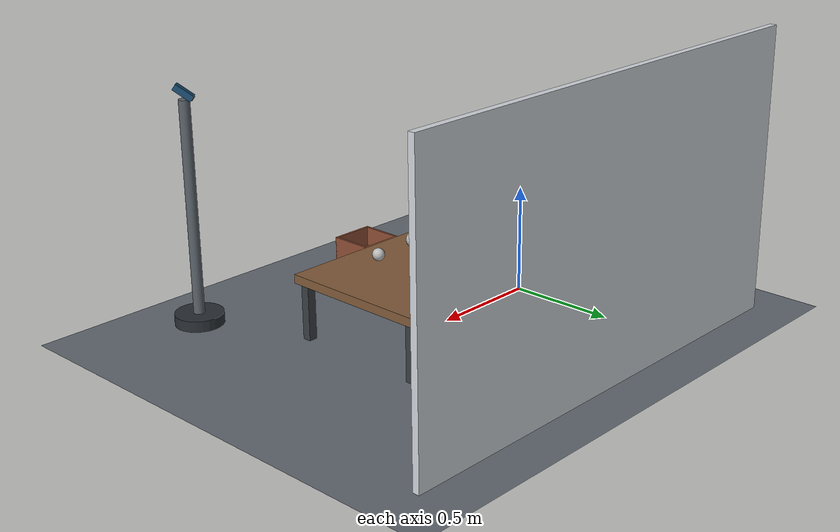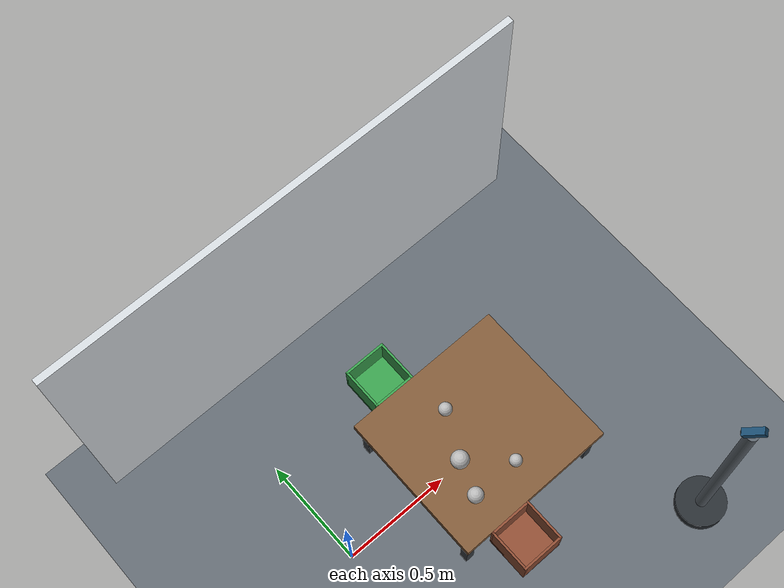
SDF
<?xml version="1.0" ?>
<sdf version="1.6">
  <world name="pick_place">
    <gravity>0 0 -9.81</gravity>

    <physics name="fruit_sorting_physics" type="ode">
      <max_step_size>0.001</max_step_size>
      <real_time_factor>1.0</real_time_factor>
      <real_time_update_rate>1000</real_time_update_rate>
      <ode>
        <solver><type>quick</type><iters>80</iters><sor>1.3</sor></solver>
      </ode>
    </physics>

    <scene>
      <ambient>0.55 0.55 0.58 1</ambient>
      <background>0.72 0.82 0.92 1</background>
      <shadows>true</shadows>
    </scene>

    <gui fullscreen="0">
      <camera name="user_camera">
        <pose>1.65 -1.45 1.10 0 0.52 2.35</pose>
        <view_controller>orbit</view_controller>
      </camera>
    </gui>

    <!-- 地面 -->
    <model name="ground_plane">
      <static>true</static>
      <link name="link">
        <collision name="collision">
          <geometry>
            <plane><normal>0 0 1</normal><size>4 4</size></plane>
          </geometry>
        </collision>
        <visual name="visual">
          <geometry>
            <plane><normal>0 0 1</normal><size>4 4</size></plane>
          </geometry>
          <material>
            <ambient>0.32 0.35 0.38 1</ambient>
            <diffuse>0.38 0.41 0.44 1</diffuse>
          </material>
        </visual>
      </link>
    </model>

    <!-- 光照 -->
    <light name="sun" type="directional">
      <cast_shadows>true</cast_shadows>
      <pose>0 0 5 0 0 0</pose>
      <diffuse>0.8 0.8 0.8 1</diffuse>
      <specular>0.2 0.2 0.2 1</specular>
      <attenuation>
        <range>1000</range>
        <constant>0.9</constant>
        <linear>0.01</linear>
        <quadratic>0.001</quadratic>
      </attenuation>
      <direction>-0.5 0.1 -0.9</direction>
    </light>

    <!-- Soft fill light above the sorting cell for stable camera exposure. -->
    <light name="workcell_fill" type="point">
      <cast_shadows>false</cast_shadows>
      <pose>0.65 -0.10 2.20 0 0 0</pose>
      <diffuse>0.75 0.78 0.82 1</diffuse>
      <specular>0.10 0.10 0.10 1</specular>
      <attenuation>
        <range>5</range><constant>0.65</constant>
        <linear>0.08</linear><quadratic>0.02</quadratic>
      </attenuation>
    </light>

    <!-- Neutral backdrop makes the fruit silhouettes easier to inspect. -->
    <model name="sorting_cell_backdrop">
      <static>true</static>
      <pose>0.55 0.92 0.65 0 0 0</pose>
      <link name="backdrop_link">
        <collision name="backdrop_collision">
          <geometry><box><size>2.2 0.03 1.30</size></box></geometry>
        </collision>
        <visual name="backdrop_visual">
          <geometry><box><size>2.2 0.03 1.30</size></box></geometry>
          <material>
            <ambient>0.70 0.73 0.76 1</ambient>
            <diffuse>0.82 0.84 0.86 1</diffuse>
          </material>
        </visual>
      </link>
    </model>

    <model name="eye_to_hand_rgbd_camera">
      <static>true</static>

      <link name="stand_link">
        <pose>1.25 -0.80 0 0 0 0</pose>
        <collision name="stand_base_collision">
          <pose>0 0 0.025 0 0 0</pose>
          <geometry><cylinder><radius>0.11</radius><length>0.05</length></cylinder></geometry>
        </collision>
        <visual name="stand_base_visual">
          <pose>0 0 0.025 0 0 0</pose>
          <geometry><cylinder><radius>0.11</radius><length>0.05</length></cylinder></geometry>
          <material><ambient>0.12 0.14 0.16 1</ambient><diffuse>0.16 0.18 0.20 1</diffuse></material>
        </visual>
        <collision name="stand_column_collision">
          <pose>0 0 0.52 0 0 0</pose>
          <geometry><cylinder><radius>0.025</radius><length>1.0</length></cylinder></geometry>
        </collision>
        <visual name="stand_column_visual">
          <pose>0 0 0.52 0 0 0</pose>
          <geometry><cylinder><radius>0.025</radius><length>1.0</length></cylinder></geometry>
          <material><ambient>0.28 0.31 0.34 1</ambient><diffuse>0.35 0.38 0.41 1</diffuse></material>
        </visual>
      </link>

      <link name="camera_link">
        <pose>1.25 -0.80 1.05 0 0.611 2.268</pose>
        <collision name="camera_body_collision">
          <geometry><box><size>0.09 0.03 0.03</size></box></geometry>
        </collision>
        <visual name="camera_body_visual">
          <geometry><box><size>0.09 0.03 0.03</size></box></geometry>
          <material><ambient>0.08 0.22 0.32 1</ambient><diffuse>0.10 0.30 0.44 1</diffuse></material>
        </visual>
        <visual name="camera_lens_visual">
          <pose>0.047 0 0 0 1.5708 0</pose>
          <geometry><cylinder><radius>0.012</radius><length>0.006</length></cylinder></geometry>
          <material><ambient>0.015 0.02 0.025 1</ambient><diffuse>0.02 0.03 0.04 1</diffuse></material>
        </visual>

        <sensor name="eye_to_hand_rgbd" type="depth">
          <always_on>true</always_on>
          <visualize>true</visualize>
          <update_rate>15.0</update_rate>
          <camera>
            <horizontal_fov>1.211</horizontal_fov>
            <image><width>640</width><height>480</height><format>R8G8B8</format></image>
            <depth_camera />
            <clip><near>0.10</near><far>3.0</far></clip>
            <noise><type>gaussian</type><mean>0.0</mean><stddev>0.002</stddev></noise>
          </camera>
          <plugin name="eye_to_hand_rgbd_plugin" filename="libgazebo_ros_camera.so">
            <ros>
              <namespace>/camera</namespace>
              <remapping>camera/image_raw:=camera/color/image_raw</remapping>
              <remapping>camera/camera_info:=camera/color/camera_info</remapping>
              <remapping>camera/depth/image_raw:=camera/depth/image_rect_raw</remapping>
              <remapping>camera/depth/camera_info:=camera/depth/camera_info</remapping>
              <remapping>camera/points:=camera/depth/color/points</remapping>
            </ros>
            <camera_name>camera</camera_name>
            <frame_name>camera_color_optical_frame</frame_name>
            <min_depth>0.10</min_depth>
            <max_depth>3.0</max_depth>
          </plugin>
        </sensor>
      </link>
    </model>

    <!-- 工作台 (x=0.70, y=0.0, top_z=0.30) -->
    <model name="work_table">
      <static>true</static>
      <pose>0.70 0 0 0 0 0</pose>
      <link name="table_link">
        <collision name="table_top_collision">
          <pose>0 0 0.28 0 0 0</pose>
          <geometry><box><size>0.75 0.70 0.04</size></box></geometry>
        </collision>
        <visual name="table_top_visual">
          <pose>0 0 0.28 0 0 0</pose>
          <geometry><box><size>0.75 0.70 0.04</size></box></geometry>
          <material>
            <ambient>0.50 0.35 0.22 1</ambient>
            <diffuse>0.50 0.35 0.22 1</diffuse>
          </material>
        </visual>
        <!-- Four legs make the physical workcell easier to read in Gazebo. -->
        <collision name="leg_1_collision"><pose>0.335 0.31 0.13 0 0 0</pose><geometry><box><size>0.04 0.04 0.26</size></box></geometry></collision>
        <visual name="leg_1_visual"><pose>0.335 0.31 0.13 0 0 0</pose><geometry><box><size>0.04 0.04 0.26</size></box></geometry><material><ambient>0.18 0.20 0.22 1</ambient><diffuse>0.22 0.24 0.26 1</diffuse></material></visual>
        <collision name="leg_2_collision"><pose>0.335 -0.31 0.13 0 0 0</pose><geometry><box><size>0.04 0.04 0.26</size></box></geometry></collision>
        <visual name="leg_2_visual"><pose>0.335 -0.31 0.13 0 0 0</pose><geometry><box><size>0.04 0.04 0.26</size></box></geometry><material><ambient>0.18 0.20 0.22 1</ambient><diffuse>0.22 0.24 0.26 1</diffuse></material></visual>
        <collision name="leg_3_collision"><pose>-0.335 0.31 0.13 0 0 0</pose><geometry><box><size>0.04 0.04 0.26</size></box></geometry></collision>
        <visual name="leg_3_visual"><pose>-0.335 0.31 0.13 0 0 0</pose><geometry><box><size>0.04 0.04 0.26</size></box></geometry><material><ambient>0.18 0.20 0.22 1</ambient><diffuse>0.22 0.24 0.26 1</diffuse></material></visual>
        <collision name="leg_4_collision"><pose>-0.335 -0.31 0.13 0 0 0</pose><geometry><box><size>0.04 0.04 0.26</size></box></geometry></collision>
        <visual name="leg_4_visual"><pose>-0.335 -0.31 0.13 0 0 0</pose><geometry><box><size>0.04 0.04 0.26</size></box></geometry><material><ambient>0.18 0.20 0.22 1</ambient><diffuse>0.22 0.24 0.26 1</diffuse></material></visual>
      </link>
    </model>

    <!-- 料框 (x=0.55, y=0.45, top_z=0.30, 0.20x0.20x0.15) -->
    <model name="bin">
      <static>true</static>
      <pose>0.55 0.45 0.225 0 0 0</pose>
      <link name="bin_link">
        <!-- 底面 -->
        <collision name="bottom_collision">
          <pose>0 0 -0.065 0 0 0</pose>
          <geometry><box><size>0.20 0.20 0.02</size></box></geometry>
        </collision>
        <visual name="bottom_visual">
          <pose>0 0 -0.065 0 0 0</pose>
          <geometry><box><size>0.20 0.20 0.02</size></box></geometry>
          <material>
            <ambient>0.18 0.50 0.24 1</ambient>
            <diffuse>0.22 0.62 0.30 1</diffuse>
          </material>
        </visual>
        <!-- 四壁 -->
        <collision name="wall_ny_collision"><pose>0 0.095 0 0 0 0</pose><geometry><box><size>0.20 0.01 0.15</size></box></geometry></collision>
        <visual name="wall_ny_visual"><pose>0 0.095 0 0 0 0</pose><geometry><box><size>0.20 0.01 0.15</size></box></geometry><material><ambient>0.18 0.50 0.24 1</ambient><diffuse>0.22 0.62 0.30 1</diffuse></material></visual>
        <collision name="wall_py_collision"><pose>0 -0.095 0 0 0 0</pose><geometry><box><size>0.20 0.01 0.15</size></box></geometry></collision>
        <visual name="wall_py_visual"><pose>0 -0.095 0 0 0 0</pose><geometry><box><size>0.20 0.01 0.15</size></box></geometry><material><ambient>0.18 0.50 0.24 1</ambient><diffuse>0.22 0.62 0.30 1</diffuse></material></visual>
        <collision name="wall_nx_collision"><pose>0.095 0 0 0 0 0</pose><geometry><box><size>0.01 0.20 0.15</size></box></geometry></collision>
        <visual name="wall_nx_visual"><pose>0.095 0 0 0 0 0</pose><geometry><box><size>0.01 0.20 0.15</size></box></geometry><material><ambient>0.18 0.50 0.24 1</ambient><diffuse>0.22 0.62 0.30 1</diffuse></material></visual>
        <collision name="wall_px_collision"><pose>-0.095 0 0 0 0 0</pose><geometry><box><size>0.01 0.20 0.15</size></box></geometry></collision>
        <visual name="wall_px_visual"><pose>-0.095 0 0 0 0 0</pose><geometry><box><size>0.01 0.20 0.15</size></box></geometry><material><ambient>0.18 0.50 0.24 1</ambient><diffuse>0.22 0.62 0.30 1</diffuse></material></visual>
      </link>
    </model>

    <!-- 坏果料框 unhealthy (x=0.55, y=-0.45, top_z=0.30, 0.20x0.20x0.15) -->
    <model name="bin_unhealthy">
      <static>true</static>
      <pose>0.55 -0.45 0.225 0 0 0</pose>
      <link name="bin_link">
        <collision name="bottom_collision"><pose>0 0 -0.065 0 0 0</pose><geometry><box><size>0.20 0.20 0.02</size></box></geometry></collision>
        <visual name="bottom_visual"><pose>0 0 -0.065 0 0 0</pose><geometry><box><size>0.20 0.20 0.02</size></box></geometry><material><ambient>0.55 0.30 0.20 1</ambient><diffuse>0.55 0.30 0.20 1</diffuse></material></visual>
        <collision name="wall_ny_collision"><pose>0 0.095 0 0 0 0</pose><geometry><box><size>0.20 0.01 0.15</size></box></geometry></collision>
        <visual name="wall_ny_visual"><pose>0 0.095 0 0 0 0</pose><geometry><box><size>0.20 0.01 0.15</size></box></geometry><material><ambient>0.55 0.30 0.20 1</ambient><diffuse>0.55 0.30 0.20 1</diffuse></material></visual>
        <collision name="wall_py_collision"><pose>0 -0.095 0 0 0 0</pose><geometry><box><size>0.20 0.01 0.15</size></box></geometry></collision>
        <visual name="wall_py_visual"><pose>0 -0.095 0 0 0 0</pose><geometry><box><size>0.20 0.01 0.15</size></box></geometry><material><ambient>0.55 0.30 0.20 1</ambient><diffuse>0.55 0.30 0.20 1</diffuse></material></visual>
        <collision name="wall_nx_collision"><pose>0.095 0 0 0 0 0</pose><geometry><box><size>0.01 0.20 0.15</size></box></geometry></collision>
        <visual name="wall_nx_visual"><pose>0.095 0 0 0 0 0</pose><geometry><box><size>0.01 0.20 0.15</size></box></geometry><material><ambient>0.55 0.30 0.20 1</ambient><diffuse>0.55 0.30 0.20 1</diffuse></material></visual>
        <collision name="wall_px_collision"><pose>-0.095 0 0 0 0 0</pose><geometry><box><size>0.01 0.20 0.15</size></box></geometry></collision>
        <visual name="wall_px_visual"><pose>-0.095 0 0 0 0 0</pose><geometry><box><size>0.01 0.20 0.15</size></box></geometry><material><ambient>0.55 0.30 0.20 1</ambient><diffuse>0.55 0.30 0.20 1</diffuse></material></visual>
      </link>
    </model>

    <!-- ═══ 苹果 (贴真实苹果照片纹理，供 YOLO 识别 Healthy/Unhealthy) ═══ -->
    <!-- 苹果 1: Healthy (r=0.035, x=0.50, y=-0.20) -->
    <model name="fruit_apple_1">
      <static>false</static>
      <pose>0.50 -0.20 0.335 0 0 0</pose>
      <link name="apple_link">
        <inertial><mass>0.15</mass><inertia><ixx>7.35e-05</ixx><ixy>0</ixy><ixz>0</ixz><iyy>7.35e-05</iyy><iyz>0</iyz><izz>7.35e-05</izz></inertia></inertial>
        <collision name="collision">
          <geometry><sphere><radius>0.035</radius></sphere></geometry>
          <surface>
            <friction><ode><mu>0.9</mu><mu2>0.9</mu2></ode></friction>
            <bounce><restitution_coefficient>0.0</restitution_coefficient><threshold>1000</threshold></bounce>
            <contact><ode><kp>100000</kp><kd>10</kd><max_vel>0.05</max_vel><min_depth>0.001</min_depth></ode></contact>
          </surface>
        </collision>
        <visual name="visual">
          <geometry><sphere><radius>0.035</radius></sphere></geometry>
          <material>
            <script>
              <uri>file://materials/scripts</uri>
              <uri>file://materials/textures</uri>
              <name>Apple/Healthy</name>
            </script>
          </material>
        </visual>
      </link>
    </model>

    <!-- 苹果 2: Unhealthy (r=0.040, x=0.55, y=-0.05) -->
    <model name="fruit_apple_2">
      <static>false</static>
      <pose>0.55 -0.05 0.340 0 0 0</pose>
      <link name="apple_link">
        <inertial><mass>0.18</mass><inertia><ixx>1.15e-04</ixx><ixy>0</ixy><ixz>0</ixz><iyy>1.15e-04</iyy><iyz>0</iyz><izz>1.15e-04</izz></inertia></inertial>
        <collision name="collision">
          <geometry><sphere><radius>0.040</radius></sphere></geometry>
          <surface>
            <friction><ode><mu>0.9</mu><mu2>0.9</mu2></ode></friction>
            <bounce><restitution_coefficient>0.0</restitution_coefficient><threshold>1000</threshold></bounce>
            <contact><ode><kp>100000</kp><kd>10</kd><max_vel>0.05</max_vel><min_depth>0.001</min_depth></ode></contact>
          </surface>
        </collision>
        <visual name="visual">
          <geometry><sphere><radius>0.040</radius></sphere></geometry>
          <material>
            <script>
              <uri>file://materials/scripts</uri>
              <uri>file://materials/textures</uri>
              <name>Apple/Unhealthy</name>
            </script>
          </material>
        </visual>
      </link>
    </model>

    <!-- 苹果 3: Healthy (r=0.030, x=0.65, y=0.15) -->
    <model name="fruit_apple_3">
      <static>false</static>
      <pose>0.65 0.15 0.330 0 0 0</pose>
      <link name="apple_link">
        <inertial><mass>0.10</mass><inertia><ixx>3.60e-05</ixx><ixy>0</ixy><ixz>0</ixz><iyy>3.60e-05</iyy><iyz>0</iyz><izz>3.60e-05</izz></inertia></inertial>
        <collision name="collision">
          <geometry><sphere><radius>0.030</radius></sphere></geometry>
          <surface>
            <friction><ode><mu>0.9</mu><mu2>0.9</mu2></ode></friction>
            <bounce><restitution_coefficient>0.0</restitution_coefficient><threshold>1000</threshold></bounce>
            <contact><ode><kp>100000</kp><kd>10</kd><max_vel>0.05</max_vel><min_depth>0.001</min_depth></ode></contact>
          </surface>
        </collision>
        <visual name="visual">
          <geometry><sphere><radius>0.030</radius></sphere></geometry>
          <material>
            <script>
              <uri>file://materials/scripts</uri>
              <uri>file://materials/textures</uri>
              <name>Apple/Healthy</name>
            </script>
          </material>
        </visual>
      </link>
    </model>

    <!-- 苹果 4: Unhealthy (r=0.028, x=0.72, y=-0.20) -->
    <model name="fruit_apple_4">
      <static>false</static>
      <pose>0.72 -0.20 0.328 0 0 0</pose>
      <link name="apple_link">
        <inertial><mass>0.08</mass><inertia><ixx>2.51e-05</ixx><ixy>0</ixy><ixz>0</ixz><iyy>2.51e-05</iyy><iyz>0</iyz><izz>2.51e-05</izz></inertia></inertial>
        <collision name="collision">
          <geometry><sphere><radius>0.028</radius></sphere></geometry>
          <surface>
            <friction><ode><mu>0.9</mu><mu2>0.9</mu2></ode></friction>
            <bounce><restitution_coefficient>0.0</restitution_coefficient><threshold>1000</threshold></bounce>
            <contact><ode><kp>100000</kp><kd>10</kd><max_vel>0.05</max_vel><min_depth>0.001</min_depth></ode></contact>
          </surface>
        </collision>
        <visual name="visual">
          <geometry><sphere><radius>0.028</radius></sphere></geometry>
          <material>
            <script>
              <uri>file://materials/scripts</uri>
              <uri>file://materials/textures</uri>
              <name>Apple/Unhealthy</name>
            </script>
          </material>
        </visual>
      </link>
    </model>

    <!-- Gazebo ROS state plugin (必须: 使 ros2_control 能读取仿真状态) -->
    <plugin name="gazebo_ros_state" filename="libgazebo_ros_state.so">
      <ros>
        <namespace>/</namespace>
        <argument>--ros-args</argument>
      </ros>
    </plugin>

  </world>
</sdf>
